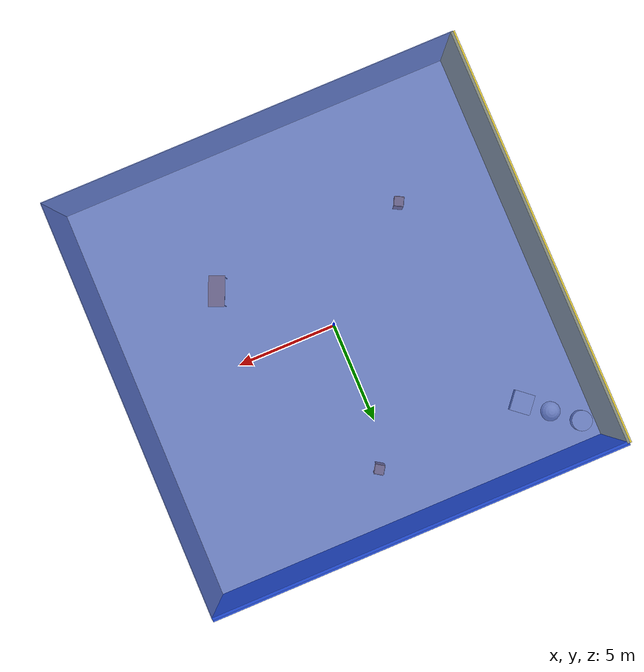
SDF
<sdf version="1.4">
 <world name="default">
  <physics type="ode">
   <max_step_size>0.001</max_step_size>
   <real_time_factor>1</real_time_factor>
   <real_time_update_rate>1000</real_time_update_rate>
   <gravity>0 0 -9.8</gravity>
  </physics>
  <scene><ambient>0.4 0.4 0.4 1</ambient><background>0.7 0.7 0.7 1</background><shadows>1</shadows></scene>
  <model name="Surrounding">
   <static>1</static>
   <link name="Ceiling">
    <collision name="Ceiling_Collision"><geometry><box><size>20 20 0.1</size></box></geometry></collision>
    <visual name="Ceiling_Visual">
     <geometry><box><size>20 20 0.1</size></box></geometry>
     <material>
      <script><uri>file://media/materials/scripts/gazebo.material</uri><name>Gazebo/BlueTransparent</name></script>
     </material>
    </visual>
    <pose>0 0 4.05 0 0 0</pose>
   </link>
   <link name="Wall_South">
    <collision name="Wall_South_Collision">
     <geometry><box><size>20 0 4</size></box></geometry>
     <pose>0 0 2 0 -0 0</pose>
    </collision>
    <visual name="Wall_South_Visual">
     <pose>0 0 2 0 -0 0</pose>
     <geometry><box><size>20 0 4</size></box></geometry>
     <material>
      <script><uri>file://media/materials/scripts/gazebo.material</uri><name>Gazebo/JointAnchor</name></script>
     </material>
    </visual>
    <velocity_decay><linear>0</linear><angular>0</angular></velocity_decay>
    <pose>0 -10 0 0 -0 0</pose>
   </link>
   <link name="Wall_East">
    <collision name="Wall_21_Collision">
     <geometry><box><size>20 0 4</size></box></geometry>
     <pose>0 0 2 0 -0 0</pose>
    </collision>
    <visual name="Wall_21_Visual">
     <pose>0 0 2 0 -0 0</pose>
     <geometry><box><size>20 0 4</size></box></geometry>
     <material>
      <script><uri>file://media/materials/scripts/gazebo.material</uri><name>Gazebo/GreyGradientSky</name></script>
     </material>
    </visual>
    <velocity_decay><linear>0</linear><angular>0</angular></velocity_decay>
    <pose>10 0 0 0 -0 1.5708</pose>
   </link>
   <link name="Wall_North">
    <collision name="Wall_22_Collision">
     <geometry><box><size>20 0.2 4</size></box></geometry>
     <pose>0 0 2 0 -0 0</pose>
    </collision>
    <visual name="Wall_22_Visual">
     <pose>0 0 2 0 -0 0</pose>
     <geometry><box><size>20 0.2 4</size></box></geometry>
     <material>
      <script><uri>file://media/materials/scripts/gazebo.material</uri><name>Gazebo/BlueGlow</name></script>
     </material>
    </visual>
    <velocity_decay><linear>0</linear><angular>0</angular></velocity_decay>
    <pose>0 10 0 0 -0 0</pose>
   </link>
   <link name="Wall_West">
    <collision name="Wall_23_Collision">
     <geometry><box><size>20 0.2 4</size></box></geometry>
     <pose>0 0 2 0 -0 0</pose>
    </collision>
    <visual name="Wall_23_Visual">
     <pose>0 0 2 0 -0 0</pose>
     <geometry><box><size>20 0.2 4</size></box></geometry>
     <material>
      <script><uri>file://media/materials/scripts/gazebo.material</uri><name>Gazebo/ZincYellow</name></script>
     </material>
    </visual>
    <velocity_decay><linear>0</linear><angular>0</angular></velocity_decay>
    <pose>-10 0 0 0 0 -1.5708</pose>
   </link>
   <link name="Ground_link">
    <collision name="collision">
     <pose>0 0 .05 0 -0 0</pose>
     <geometry><box><size>20 20 0.1</size></box></geometry>
    </collision>
    <visual name="visual">
     <pose>0 0 .05 0 -0 0</pose>
     <geometry><box><size>20 20 0.1</size></box></geometry>
     <material>
      <script><uri>file://media/materials/scripts/gazebo.material</uri><name>Gazebo/JointAnchor</name></script>
     </material>
    </visual>
   </link>
   <static>1</static>
  </model>
  <spherical_coordinates>
   <surface_model>EARTH_WGS84</surface_model>
   <latitude_deg>0</latitude_deg>
   <longitude_deg>0</longitude_deg>
   <elevation>0</elevation>
   <heading_deg>0</heading_deg>
  </spherical_coordinates>
  <light name="lightball_0" type="diffuse">
   <diffuse>0.8 0.8 0.8 1</diffuse>
   <specular>0.2 0.2 0.2 1</specular>
   <attenuation>
    <range>100</range>
    <constant>0.7</constant>
    <linear>0.01</linear>
    <quadratic>0.001</quadratic>
   </attenuation>
   <direction>-0.5 0.1 -0.9</direction>
   <pose>-0.683095396701 -3.16791560466 2.05748929411 0 0 0</pose>
  </light>
  <light name="lightball_1" type="diffuse">
   <diffuse>0.8 0.8 0.8 1</diffuse>
   <specular>0.2 0.2 0.2 1</specular>
   <attenuation>
    <range>100</range>
    <constant>0.7</constant>
    <linear>0.01</linear>
    <quadratic>0.001</quadratic>
   </attenuation>
   <direction>-0.5 0.1 -0.9</direction>
   <pose>5.5636895839 1.60812486627 1.32811457815 0 0 0</pose>
  </light>
  <include>
   <uri>model://textured_shapes</uri>
   <pose>-8.0815230664 7.93870229786 0 0 0 0.87917670781</pose>
  </include>
  <include><uri>model://cabinet</uri><pose>-5.17470586406 -4.2601786726 0 0 0 2.64651946599</pose></include>
  <include><uri>model://cabinet</uri><pose>0.681545057446 7.18831442123 0 0 0 2.56088790346</pose></include>
  <include><uri>model://table</uri><pose>4.55694874782 -3.66728725726 0 0 0 1.15757651461</pose></include>
 </world>
</sdf>

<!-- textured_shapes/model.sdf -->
<sdf version="1.6">
  <model name="textured_shapes">
    <pose>0 0 0.5 0 0 0</pose>
    <link name="box">
      <pose>0 -1.5 0 0 0 0</pose>
      <collision name="collision">
        <geometry>
          <box>
            <size>1 1 1</size>
          </box>
        </geometry>
      </collision>
      <visual name="visual">
        <geometry>
          <box>
            <size>1 1 1</size>
          </box>
        </geometry>
        <material>
          <script>
            <uri>model://../model_source/models/textured_shapes/materials/scripts</uri>
            <uri>model://../model_source/models/textured_shapes/materials/textures</uri>
            <name>TexturedShape/Squares</name>
          </script>
        </material>
      </visual>
    </link>
    <link name="sphere">
      <collision name="collision">
        <geometry>
          <sphere>
            <radius>0.5</radius>
          </sphere>
        </geometry>
      </collision>
      <visual name="visual">
        <geometry>
          <sphere>
            <radius>0.5</radius>
          </sphere>
        </geometry>
        <material>
          <script>
            <uri>model://../model_source/models/textured_shapes/materials/scripts</uri>
            <uri>model://../model_source/models/textured_shapes/materials/textures</uri>
            <name>TexturedShape/Squares</name>
          </script>
        </material>
      </visual>
    </link>
    <link name="cylinder">
      <pose>0 1.5 0 0 0 0</pose>
      <collision name="collision">
        <geometry>
          <cylinder>
            <radius>0.5</radius>
            <length>1</length>
          </cylinder>
        </geometry>
      </collision>
      <visual name="visual">
        <geometry>
          <cylinder>
            <radius>0.5</radius>
            <length>1</length>
          </cylinder>
        </geometry>
        <material>
          <script>
            <uri>model://../model_source/models/textured_shapes/materials/scripts</uri>
            <uri>model://../model_source/models/textured_shapes/materials/textures</uri>
            <name>TexturedShape/Squares</name>
          </script>
        </material>
      </visual>
    </link>
  </model>
</sdf>

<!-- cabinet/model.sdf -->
<sdf version="1.5">
  <model name="cabinet">
    <static>true</static>
    <link name="cabinet_bottom_plate">
      <inertial>
        <pose>0 0 -1 0 0 0</pose>
        <inertia>
          <ixx>2.050000</ixx>
          <ixy>0</ixy>
          <ixz>0</ixz>
          <iyy>2.050000</iyy>
          <iyz>0</iyz>
          <izz>2.050000</izz>
        </inertia>
        <mass>25.000000</mass>
      </inertial>
      <collision name="cabinet_bottom_plate_geom">
        <pose>0 0 0.010000 0 0 0</pose>
        <geometry>
          <box>
            <size>0.450000 0.450000 0.020000</size>
          </box>
        </geometry>
      </collision>
      <visual name="cabinet_bottom_plate_geom_visual">
        <pose>0 0 0.010000 0 0 0</pose>
        <geometry>
          <box>
            <size>0.450000 0.450000 0.020000</size>
          </box>
        </geometry>
        <material>
          <script>
            <uri>model://media/materials/scripts/gazebo.material</uri>
            <name>Gazebo/Wood</name>
          </script>
        </material>
      </visual>
      <collision name="cabinet_bottom_plate_geom_cabinet_back_plate">
        <pose>0.235000 0 0.510000 0 0 0</pose>
        <geometry>
          <box>
            <size>0.020000 0.450000 1.020000</size>
          </box>
        </geometry>
      </collision>
      <visual name="cabinet_bottom_plate_geom_cabinet_back_plate_visual">
        <pose>0.235000 0 0.510000 0 0 0</pose>
        <geometry>
          <box>
            <size>0.020000 0.450000 1.020000</size>
          </box>
        </geometry>
        <material>
          <script>
            <uri>model://media/materials/scripts/gazebo.material</uri>
            <name>Gazebo/Wood</name>
          </script>
        </material>
      </visual>
      <collision name="cabinet_bottom_plate_geom_cabinet_left_plate">
        <pose>0 0.235000 0.510000 0 0 0</pose>
        <geometry>
          <box>
            <size>0.450000 0.020000 1.020000</size>
          </box>
        </geometry>
      </collision>
      <visual name="cabinet_bottom_plate_geom_cabinet_left_plate_visual">
        <pose>0 0.235000 0.510000 0 0 0</pose>
        <geometry>
          <box>
            <size>0.450000 0.020000 1.020000</size>
          </box>
        </geometry>
        <material>
          <script>
            <uri>model://media/materials/scripts/gazebo.material</uri>
            <name>Gazebo/Wood</name>
          </script>
        </material>
      </visual>
      <collision name="cabinet_bottom_plate_geom_cabinet_middle_plate">
        <pose>0 0 0.510000 0 0 0</pose>
        <geometry>
          <box>
            <size>0.450000 0.450000 0.020000</size>
          </box>
        </geometry>
      </collision>
      <visual name="cabinet_bottom_plate_geom_cabinet_middle_plate_visual">
        <pose>0 0 0.510000 0 0 0</pose>
        <geometry>
          <box>
            <size>0.450000 0.450000 0.020000</size>
          </box>
        </geometry>
        <material>
          <script>
            <uri>model://media/materials/scripts/gazebo.material</uri>
            <name>Gazebo/Wood</name>
          </script>
        </material>
      </visual>
      <collision name="cabinet_bottom_plate_geom_cabinet_right_plate">
        <pose>0 -0.235000 0.510000 0 0 0</pose>
        <geometry>
          <box>
            <size>0.450000 0.020000 1.020000</size>
          </box>
        </geometry>
      </collision>
      <visual name="cabinet_bottom_plate_geom_cabinet_right_plate_visual">
        <pose>0 -0.235000 0.510000 0 0 0</pose>
        <geometry>
          <box>
            <size>0.450000 0.020000 1.020000</size>
          </box>
        </geometry>
        <material>
          <script>
            <uri>model://media/materials/scripts/gazebo.material</uri>
            <name>Gazebo/Wood</name>
          </script>
        </material>
      </visual>
      <collision name="cabinet_bottom_plate_geom_cabinet_top_plate">
        <pose>0 0 1.010000 0 0 0</pose>
        <geometry>
          <box>
            <size>0.450000 0.450000 0.020000</size>
          </box>
        </geometry>
      </collision>
      <visual name="cabinet_bottom_plate_geom_cabinet_top_plate_visual">
        <pose>0 0 1.010000 0 0 0</pose>
        <geometry>
          <box>
            <size>0.450000 0.450000 0.020000</size>
          </box>
        </geometry>
        <material>
          <script>
            <uri>model://media/materials/scripts/gazebo.material</uri>
            <name>Gazebo/Wood</name>
          </script>
        </material>
      </visual>
    </link>
  </model>
</sdf>

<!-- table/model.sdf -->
<sdf version="1.5">
  <model name="table">
    <static>true</static>
    <link name="link">
      <collision name="surface">
        <pose>0 0 1.0 0 0 0</pose>
        <geometry>
          <box>
            <size>1.5 0.8 0.03</size>
          </box>
        </geometry>
        <surface>
          <friction>
            <ode>
              <mu>0.6</mu>
              <mu2>0.6</mu2>
            </ode>
          </friction>
        </surface>
      </collision>
      <visual name="visual1">
        <pose>0 0 1.0 0 0 0</pose>
        <geometry>
          <box>
            <size>1.5 0.8 0.03</size>
          </box>
        </geometry>
        <material>
          <script>
            <uri>model://media/materials/scripts/gazebo.material</uri>
            <name>Gazebo/Wood</name>
          </script>
        </material>
      </visual>
      <collision name="front_left_leg">
        <pose>0.68 0.38 0.5 0 0 0</pose>
        <geometry>
          <cylinder>
            <radius>0.02</radius>
            <length>1.0</length>
          </cylinder>
        </geometry>
      </collision>
      <visual name="front_left_leg">
        <pose>0.68 0.38 0.5 0 0 0</pose>
        <geometry>
          <cylinder>
            <radius>0.02</radius>
            <length>1.0</length>
          </cylinder>
        </geometry>
        <material>
          <script>
            <uri>model://media/materials/scripts/gazebo.material</uri>
            <name>Gazebo/Grey</name>
          </script>
        </material>
      </visual>
      <collision name="front_right_leg">
        <pose>0.68 -0.38 0.5 0 0 0</pose>
        <geometry>
          <cylinder>
            <radius>0.02</radius>
            <length>1.0</length>
          </cylinder>
        </geometry>
      </collision>
      <visual name="front_right_leg">
        <pose>0.68 -0.38 0.5 0 0 0</pose>
        <geometry>
          <cylinder>
            <radius>0.02</radius>
            <length>1.0</length>
          </cylinder>
        </geometry>
        <material>
          <script>
            <uri>model://media/materials/scripts/gazebo.material</uri>
            <name>Gazebo/Grey</name>
          </script>
        </material>
      </visual>
      <collision name="back_right_leg">
        <pose>-0.68 -0.38 0.5 0 0 0</pose>
        <geometry>
          <cylinder>
            <radius>0.02</radius>
            <length>1.0</length>
          </cylinder>
        </geometry>
      </collision>
      <visual name="back_right_leg">
        <pose>-0.68 -0.38 0.5 0 0 0</pose>
        <geometry>
          <cylinder>
            <radius>0.02</radius>
            <length>1.0</length>
          </cylinder>
        </geometry>
        <material>
          <script>
            <uri>model://media/materials/scripts/gazebo.material</uri>
            <name>Gazebo/Grey</name>
          </script>
        </material>
      </visual>
      <collision name="back_left_leg">
        <pose>-0.68 0.38 0.5 0 0 0</pose>
        <geometry>
          <cylinder>
            <radius>0.02</radius>
            <length>1.0</length>
          </cylinder>
        </geometry>
      </collision>
      <visual name="back_left_leg">
        <pose>-0.68 0.38 0.5 0 0 0</pose>
        <geometry>
          <cylinder>
            <radius>0.02</radius>
            <length>1.0</length>
          </cylinder>
        </geometry>
        <material>
          <script>
            <uri>model://media/materials/scripts/gazebo.material</uri>
            <name>Gazebo/Grey</name>
          </script>
        </material>
      </visual>
    </link>
  </model>
</sdf>
